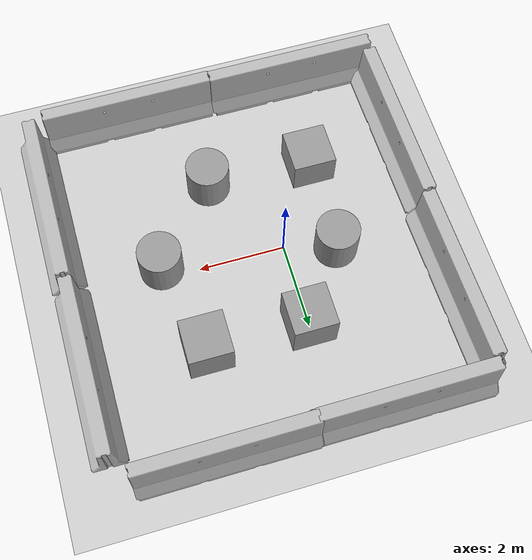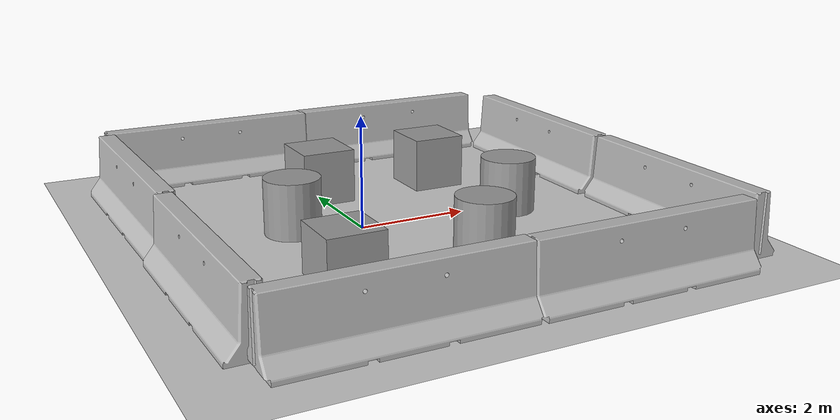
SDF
<sdf version="1.6">
 <world name="default">
  <light name="sun" type="directional">
   <pose>0 0 10 0 -0 0</pose>
   <diffuse>0.8 0.8 0.8 1</diffuse>
   <specular>0.2 0.2 0.2 1</specular>
   <attenuation>
    <range>1000</range>
    <constant>0.9</constant>
    <linear>0.01</linear>
    <quadratic>0.001</quadratic>
   </attenuation>
   <direction>-0.5 0.1 -0.9</direction>
  </light>
  <model name="ground_plane">
   <static>1</static>
   <link name="link">
    <collision name="collision">
     <geometry><plane><normal>0 0 1</normal><size>100 100</size></plane></geometry>
     <surface>
      <contact><collide_bitmask>65535</collide_bitmask></contact>
      <friction><ode><mu>100</mu><mu2>50</mu2></ode></friction>
     </surface>
    </collision>
    <visual name="visual">
     <cast_shadows>0</cast_shadows>
     <geometry><plane><normal>0 0 1</normal><size>100 100</size></plane></geometry>
     <material>
      <script><uri>file://media/materials/scripts/gazebo.material</uri><name>Gazebo/Grey</name></script>
     </material>
    </visual>
   </link>
  </model>
  <gravity>0 0 -9.8</gravity>
  <magnetic_field>6e-06 2.3e-05 -4.2e-05</magnetic_field>
  <atmosphere type="adiabatic"/>
  <physics name="default_physics" default="0" type="ode">
   <max_step_size>0.001</max_step_size>
   <real_time_factor>1</real_time_factor>
   <real_time_update_rate>1000</real_time_update_rate>
  </physics>
  <scene><ambient>0.4 0.4 0.4 1</ambient><background>0.7 0.7 0.7 1</background><shadows>1</shadows></scene>
  <audio><device>default</device></audio>
  <spherical_coordinates>
   <surface_model>EARTH_WGS84</surface_model>
   <latitude_deg>0</latitude_deg>
   <longitude_deg>0</longitude_deg>
   <elevation>0</elevation>
   <heading_deg>0</heading_deg>
  </spherical_coordinates>
  <model name="jersey_barrier">
   <static>1</static>
   <link name="link">
    <visual name="visual">
     <geometry><mesh><uri>model://jersey_barrier/meshes/jersey_barrier.dae</uri></mesh></geometry>
    </visual>
    <collision name="upright">
     <pose>0 0 0.5715 0 -0 0</pose>
     <geometry><box><size>4.06542 0.3063 1.143</size></box></geometry>
    </collision>
    <collision name="base">
     <pose>0 0 0.032258 0 -0 0</pose>
     <geometry><box><size>4.06542 0.8107 0.064516</size></box></geometry>
    </collision>
    <collision name="base2">
     <pose>0 0 0.1 0 -0 0</pose>
     <geometry><box><size>4.06542 0.65 0.1</size></box></geometry>
    </collision>
    <collision name="base3">
     <pose>0 0 0.2 0 -0 0</pose>
     <geometry><box><size>4.06542 0.5 0.1</size></box></geometry>
    </collision>
    <collision name="left-angle">
     <pose>0 -0.224 0.2401 0.9 -0 0</pose>
     <geometry><box><size>4.06542 0.5 0.064516</size></box></geometry>
    </collision>
    <collision name="right-angle">
     <pose>0 0.224 0.2401 -0.9 0 0</pose>
     <geometry><box><size>4.06542 0.5 0.064516</size></box></geometry>
    </collision>
   </link>
   <pose>-1.4479 -4.31968 0 0 -0 0</pose>
  </model>
  <model name="jersey_barrier_0">
   <static>1</static>
   <link name="link">
    <visual name="visual">
     <geometry><mesh><uri>model://jersey_barrier/meshes/jersey_barrier.dae</uri></mesh></geometry>
    </visual>
    <collision name="upright">
     <pose>0 0 0.5715 0 -0 0</pose>
     <geometry><box><size>4.06542 0.3063 1.143</size></box></geometry>
    </collision>
    <collision name="base">
     <pose>0 0 0.032258 0 -0 0</pose>
     <geometry><box><size>4.06542 0.8107 0.064516</size></box></geometry>
    </collision>
    <collision name="base2">
     <pose>0 0 0.1 0 -0 0</pose>
     <geometry><box><size>4.06542 0.65 0.1</size></box></geometry>
    </collision>
    <collision name="base3">
     <pose>0 0 0.2 0 -0 0</pose>
     <geometry><box><size>4.06542 0.5 0.1</size></box></geometry>
    </collision>
    <collision name="left-angle">
     <pose>0 -0.224 0.2401 0.9 -0 0</pose>
     <geometry><box><size>4.06542 0.5 0.064516</size></box></geometry>
    </collision>
    <collision name="right-angle">
     <pose>0 0.224 0.2401 -0.9 0 0</pose>
     <geometry><box><size>4.06542 0.5 0.064516</size></box></geometry>
    </collision>
   </link>
   <pose>2.59609 -4.34233 0 0 -0 0</pose>
  </model>
  <model name="jersey_barrier_1">
   <static>1</static>
   <link name="link">
    <visual name="visual">
     <geometry><mesh><uri>model://jersey_barrier/meshes/jersey_barrier.dae</uri></mesh></geometry>
    </visual>
    <collision name="upright">
     <pose>0 0 0.5715 0 -0 0</pose>
     <geometry><box><size>4.06542 0.3063 1.143</size></box></geometry>
    </collision>
    <collision name="base">
     <pose>0 0 0.032258 0 -0 0</pose>
     <geometry><box><size>4.06542 0.8107 0.064516</size></box></geometry>
    </collision>
    <collision name="base2">
     <pose>0 0 0.1 0 -0 0</pose>
     <geometry><box><size>4.06542 0.65 0.1</size></box></geometry>
    </collision>
    <collision name="base3">
     <pose>0 0 0.2 0 -0 0</pose>
     <geometry><box><size>4.06542 0.5 0.1</size></box></geometry>
    </collision>
    <collision name="left-angle">
     <pose>0 -0.224 0.2401 0.9 -0 0</pose>
     <geometry><box><size>4.06542 0.5 0.064516</size></box></geometry>
    </collision>
    <collision name="right-angle">
     <pose>0 0.224 0.2401 -0.9 0 0</pose>
     <geometry><box><size>4.06542 0.5 0.064516</size></box></geometry>
    </collision>
   </link>
   <pose>-3.40833 -2.02777 0 0 0 -1.55666</pose>
  </model>
  <model name="jersey_barrier_2">
   <static>1</static>
   <link name="link">
    <visual name="visual">
     <geometry><mesh><uri>model://jersey_barrier/meshes/jersey_barrier.dae</uri></mesh></geometry>
    </visual>
    <collision name="upright">
     <pose>0 0 0.5715 0 -0 0</pose>
     <geometry><box><size>4.06542 0.3063 1.143</size></box></geometry>
    </collision>
    <collision name="base">
     <pose>0 0 0.032258 0 -0 0</pose>
     <geometry><box><size>4.06542 0.8107 0.064516</size></box></geometry>
    </collision>
    <collision name="base2">
     <pose>0 0 0.1 0 -0 0</pose>
     <geometry><box><size>4.06542 0.65 0.1</size></box></geometry>
    </collision>
    <collision name="base3">
     <pose>0 0 0.2 0 -0 0</pose>
     <geometry><box><size>4.06542 0.5 0.1</size></box></geometry>
    </collision>
    <collision name="left-angle">
     <pose>0 -0.224 0.2401 0.9 -0 0</pose>
     <geometry><box><size>4.06542 0.5 0.064516</size></box></geometry>
    </collision>
    <collision name="right-angle">
     <pose>0 0.224 0.2401 -0.9 0 0</pose>
     <geometry><box><size>4.06542 0.5 0.064516</size></box></geometry>
    </collision>
   </link>
   <pose>-3.4159 2.05945 0 0 -0 1.58999</pose>
  </model>
  <model name="jersey_barrier_3">
   <static>1</static>
   <link name="link">
    <visual name="visual">
     <geometry><mesh><uri>model://jersey_barrier/meshes/jersey_barrier.dae</uri></mesh></geometry>
    </visual>
    <collision name="upright">
     <pose>0 0 0.5715 0 -0 0</pose>
     <geometry><box><size>4.06542 0.3063 1.143</size></box></geometry>
    </collision>
    <collision name="base">
     <pose>0 0 0.032258 0 -0 0</pose>
     <geometry><box><size>4.06542 0.8107 0.064516</size></box></geometry>
    </collision>
    <collision name="base2">
     <pose>0 0 0.1 0 -0 0</pose>
     <geometry><box><size>4.06542 0.65 0.1</size></box></geometry>
    </collision>
    <collision name="base3">
     <pose>0 0 0.2 0 -0 0</pose>
     <geometry><box><size>4.06542 0.5 0.1</size></box></geometry>
    </collision>
    <collision name="left-angle">
     <pose>0 -0.224 0.2401 0.9 -0 0</pose>
     <geometry><box><size>4.06542 0.5 0.064516</size></box></geometry>
    </collision>
    <collision name="right-angle">
     <pose>0 0.224 0.2401 -0.9 0 0</pose>
     <geometry><box><size>4.06542 0.5 0.064516</size></box></geometry>
    </collision>
   </link>
   <pose>-1.40707 4.25648 0 0 -0 0</pose>
  </model>
  <model name="jersey_barrier_4">
   <static>1</static>
   <link name="link">
    <visual name="visual">
     <geometry><mesh><uri>model://jersey_barrier/meshes/jersey_barrier.dae</uri></mesh></geometry>
    </visual>
    <collision name="upright">
     <pose>0 0 0.5715 0 -0 0</pose>
     <geometry><box><size>4.06542 0.3063 1.143</size></box></geometry>
    </collision>
    <collision name="base">
     <pose>0 0 0.032258 0 -0 0</pose>
     <geometry><box><size>4.06542 0.8107 0.064516</size></box></geometry>
    </collision>
    <collision name="base2">
     <pose>0 0 0.1 0 -0 0</pose>
     <geometry><box><size>4.06542 0.65 0.1</size></box></geometry>
    </collision>
    <collision name="base3">
     <pose>0 0 0.2 0 -0 0</pose>
     <geometry><box><size>4.06542 0.5 0.1</size></box></geometry>
    </collision>
    <collision name="left-angle">
     <pose>0 -0.224 0.2401 0.9 -0 0</pose>
     <geometry><box><size>4.06542 0.5 0.064516</size></box></geometry>
    </collision>
    <collision name="right-angle">
     <pose>0 0.224 0.2401 -0.9 0 0</pose>
     <geometry><box><size>4.06542 0.5 0.064516</size></box></geometry>
    </collision>
   </link>
   <pose>2.54427 4.28378 0 0 -0 0</pose>
  </model>
  <model name="jersey_barrier_5">
   <static>1</static>
   <link name="link">
    <visual name="visual">
     <geometry><mesh><uri>model://jersey_barrier/meshes/jersey_barrier.dae</uri></mesh></geometry>
    </visual>
    <collision name="upright">
     <pose>0 0 0.5715 0 -0 0</pose>
     <geometry><box><size>4.06542 0.3063 1.143</size></box></geometry>
    </collision>
    <collision name="base">
     <pose>0 0 0.032258 0 -0 0</pose>
     <geometry><box><size>4.06542 0.8107 0.064516</size></box></geometry>
    </collision>
    <collision name="base2">
     <pose>0 0 0.1 0 -0 0</pose>
     <geometry><box><size>4.06542 0.65 0.1</size></box></geometry>
    </collision>
    <collision name="base3">
     <pose>0 0 0.2 0 -0 0</pose>
     <geometry><box><size>4.06542 0.5 0.1</size></box></geometry>
    </collision>
    <collision name="left-angle">
     <pose>0 -0.224 0.2401 0.9 -0 0</pose>
     <geometry><box><size>4.06542 0.5 0.064516</size></box></geometry>
    </collision>
    <collision name="right-angle">
     <pose>0 0.224 0.2401 -0.9 0 0</pose>
     <geometry><box><size>4.06542 0.5 0.064516</size></box></geometry>
    </collision>
   </link>
   <pose>4.9355 1.8426 0 0 -0 1.56928</pose>
  </model>
  <model name="jersey_barrier_6">
   <static>1</static>
   <link name="link">
    <visual name="visual">
     <geometry><mesh><uri>model://jersey_barrier/meshes/jersey_barrier.dae</uri></mesh></geometry>
    </visual>
    <collision name="upright">
     <pose>0 0 0.5715 0 -0 0</pose>
     <geometry><box><size>4.06542 0.3063 1.143</size></box></geometry>
    </collision>
    <collision name="base">
     <pose>0 0 0.032258 0 -0 0</pose>
     <geometry><box><size>4.06542 0.8107 0.064516</size></box></geometry>
    </collision>
    <collision name="base2">
     <pose>0 0 0.1 0 -0 0</pose>
     <geometry><box><size>4.06542 0.65 0.1</size></box></geometry>
    </collision>
    <collision name="base3">
     <pose>0 0 0.2 0 -0 0</pose>
     <geometry><box><size>4.06542 0.5 0.1</size></box></geometry>
    </collision>
    <collision name="left-angle">
     <pose>0 -0.224 0.2401 0.9 -0 0</pose>
     <geometry><box><size>4.06542 0.5 0.064516</size></box></geometry>
    </collision>
    <collision name="right-angle">
     <pose>0 0.224 0.2401 -0.9 0 0</pose>
     <geometry><box><size>4.06542 0.5 0.064516</size></box></geometry>
    </collision>
   </link>
   <pose>4.9548 -2.2773 0 0 -0 1.57118</pose>
  </model>
  <model name="unit_box">
   <pose>2.34143 1.95321 0.499999 3e-06 -1e-06 -0.003532</pose>
   <link name="link">
    <inertial>
     <mass>1</mass>
     <inertia>
      <ixx>0.166667</ixx>
      <ixy>0</ixy>
      <ixz>0</ixz>
      <iyy>0.166667</iyy>
      <iyz>0</iyz>
      <izz>0.166667</izz>
     </inertia>
    </inertial>
    <collision name="collision"><geometry><box><size>1 1 1</size></box></geometry></collision>
    <visual name="visual">
     <geometry><box><size>1 1 1</size></box></geometry>
     <material>
      <script><name>Gazebo/Grey</name><uri>file://media/materials/scripts/gazebo.material</uri></script>
     </material>
    </visual>
   </link>
  </model>
  <model name="unit_cylinder">
   <pose>1.24348 -2.02013 0.499999 -0 -0 -0</pose>
   <link name="link">
    <inertial>
     <mass>1</mass>
     <inertia><ixx>0.145833</ixx><ixy>0</ixy><ixz>0</ixz><iyy>0.145833</iyy><iyz>0</iyz><izz>0.125</izz></inertia>
    </inertial>
    <collision name="collision">
     <geometry><cylinder><radius>0.500001</radius><length>1</length></cylinder></geometry>
    </collision>
    <visual name="visual">
     <geometry><cylinder><radius>0.500001</radius><length>1</length></cylinder></geometry>
     <material>
      <script><name>Gazebo/Grey</name><uri>file://media/materials/scripts/gazebo.material</uri></script>
     </material>
    </visual>
   </link>
  </model>
  <model name="unit_cylinder_0">
   <pose>-1.15251 0.339606 0.499997 0 0 -1e-06</pose>
   <link name="link">
    <inertial>
     <mass>1</mass>
     <inertia><ixx>0.145833</ixx><ixy>0</ixy><ixz>0</ixz><iyy>0.145833</iyy><iyz>0</iyz><izz>0.125</izz></inertia>
    </inertial>
    <collision name="collision">
     <geometry><cylinder><radius>0.500001</radius><length>1</length></cylinder></geometry>
    </collision>
    <visual name="visual">
     <geometry><cylinder><radius>0.500001</radius><length>1</length></cylinder></geometry>
     <material>
      <script><name>Gazebo/Grey</name><uri>file://media/materials/scripts/gazebo.material</uri></script>
     </material>
    </visual>
   </link>
  </model>
  <model name="unit_box_0">
   <pose>-1.19935 -1.94013 0.362281 0 -0 6e-06</pose>
   <link name="link">
    <inertial>
     <mass>1</mass>
     <inertia>
      <ixx>0.166667</ixx>
      <ixy>0</ixy>
      <ixz>0</ixz>
      <iyy>0.166667</iyy>
      <iyz>0</iyz>
      <izz>0.166667</izz>
     </inertia>
    </inertial>
    <collision name="collision"><geometry><box><size>1 1 1</size></box></geometry></collision>
    <visual name="visual">
     <geometry><box><size>1 1 1</size></box></geometry>
     <material>
      <script><name>Gazebo/Grey</name><uri>file://media/materials/scripts/gazebo.material</uri></script>
     </material>
    </visual>
   </link>
  </model>
  <model name="unit_box_1">
   <pose>0.021303 1.96172 0.499996 -5e-06 -8e-06 0.000481</pose>
   <link name="link">
    <inertial>
     <mass>1</mass>
     <inertia>
      <ixx>0.166667</ixx>
      <ixy>0</ixy>
      <ixz>0</ixz>
      <iyy>0.166667</iyy>
      <iyz>0</iyz>
      <izz>0.166667</izz>
     </inertia>
    </inertial>
    <collision name="collision"><geometry><box><size>1 1 1</size></box></geometry></collision>
    <visual name="visual">
     <geometry><box><size>1 1 1</size></box></geometry>
     <material>
      <script><name>Gazebo/Grey</name><uri>file://media/materials/scripts/gazebo.material</uri></script>
     </material>
    </visual>
   </link>
  </model>
  <model name="unit_cylinder_2">
   <pose>2.82351 -0.238081 0.49999 -1e-06 0 2e-06</pose>
   <link name="link">
    <inertial>
     <mass>1</mass>
     <inertia><ixx>0.145833</ixx><ixy>0</ixy><ixz>0</ixz><iyy>0.145833</iyy><iyz>0</iyz><izz>0.125</izz></inertia>
    </inertial>
    <collision name="collision">
     <geometry><cylinder><radius>0.5</radius><length>1</length></cylinder></geometry>
    </collision>
    <visual name="visual">
     <geometry><cylinder><radius>0.5</radius><length>1</length></cylinder></geometry>
     <material>
      <script><name>Gazebo/Grey</name><uri>file://media/materials/scripts/gazebo.material</uri></script>
     </material>
    </visual>
   </link>
  </model>
 </world>
</sdf>
